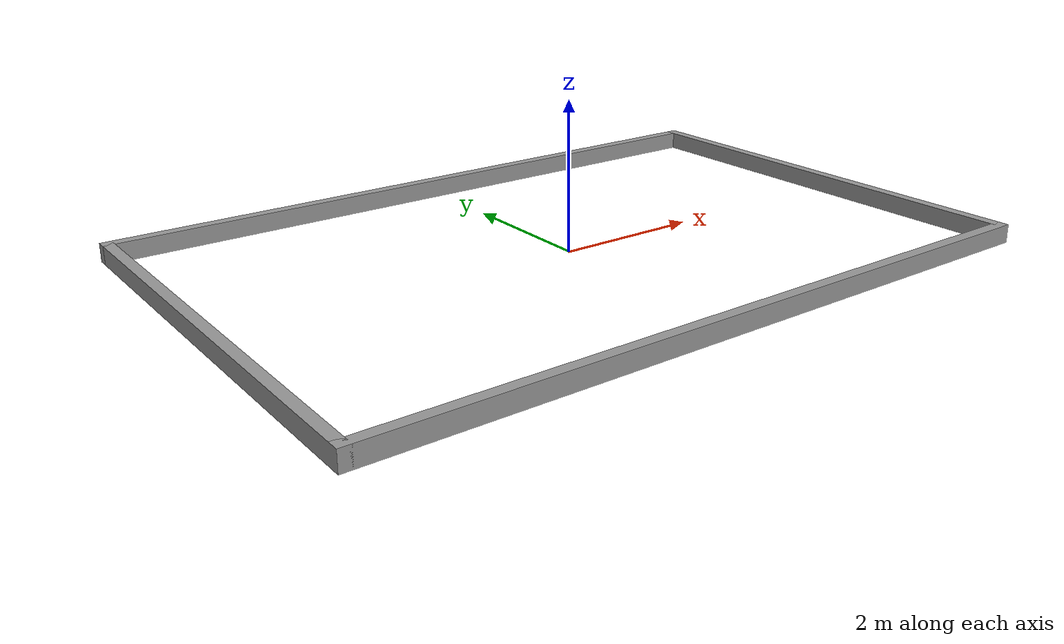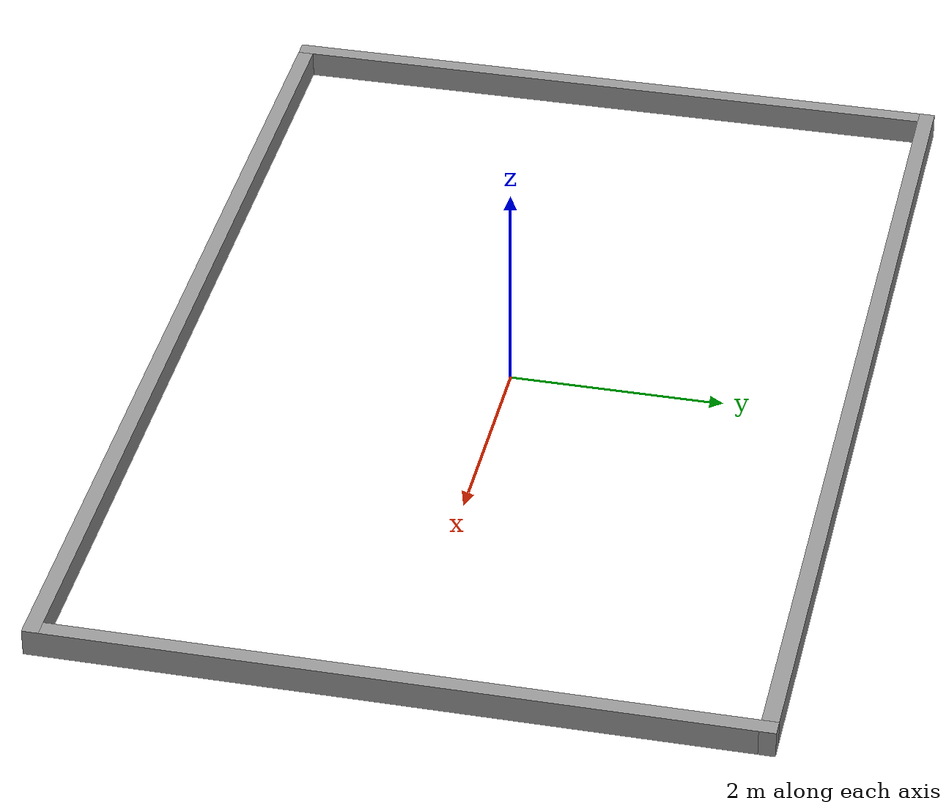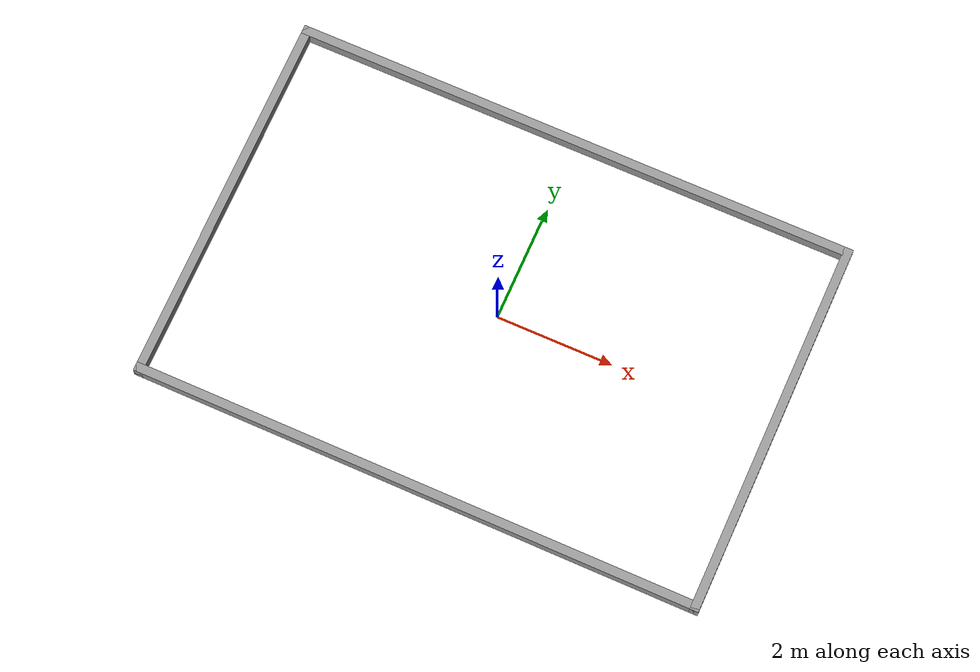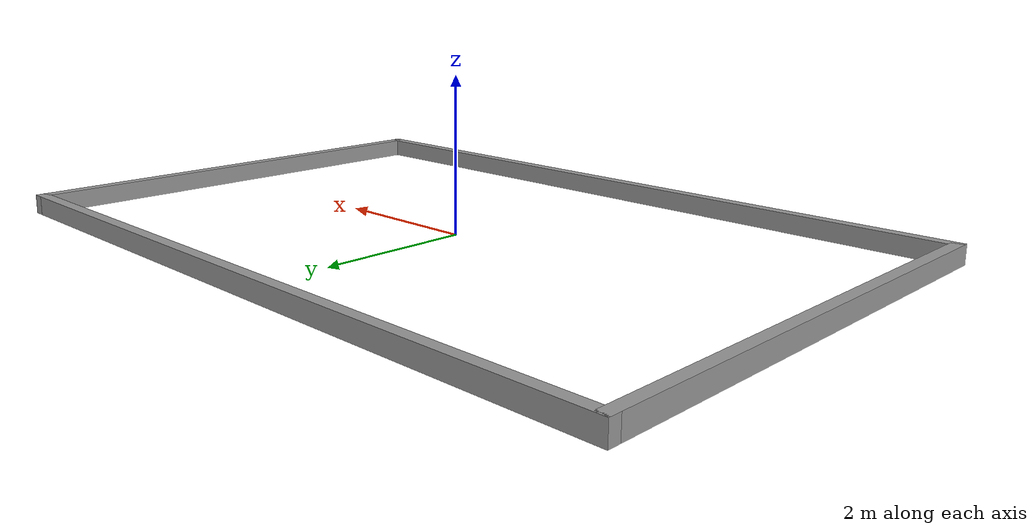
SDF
<?xml version='1.0'?>
<sdf version='1.7'>
  <model name='walls'>
    <pose>-0.051936 0.025334 0 0 -0 0</pose>
    <link name='Wall_0'>
      <collision name='Wall_0_Collision'>
        <geometry>
          <box>
            <size>6.5 0.15 0.25</size>
          </box>
        </geometry>
        <pose>0 0 0.125 0 -0 0</pose>
      </collision>
      <visual name='Wall_0_Visual'>
        <pose>0 0 0.125 0 -0 0</pose>
        <geometry>
          <box>
            <size>6.5 0.15 0.25</size>
          </box>
        </geometry>
        <material>
          <script>
            <uri>file://media/materials/scripts/gazebo.material</uri>
            <name>Gazebo/Grey</name>
          </script>
          <ambient>1 1 1 1</ambient>
        </material>
        <meta>
          <layer>0</layer>
        </meta>
      </visual>
      <pose>-4.8 0 0 0 -0 -1.5708</pose>
    </link>
    <link name='Wall_2'>
      <collision name='Wall_2_Collision'>
        <geometry>
          <box>
            <size>9.75 0.15 0.25</size>
          </box>
        </geometry>
        <pose>0 0 0.125 0 -0 0</pose>
      </collision>
      <visual name='Wall_2_Visual'>
        <pose>0 0 0.125 0 -0 0</pose>
        <geometry>
          <box>
            <size>9.75 0.15 0.25</size>
          </box>
        </geometry>
        <material>
          <script>
            <uri>file://media/materials/scripts/gazebo.material</uri>
            <name>Gazebo/Grey</name>
          </script>
          <ambient>1 1 1 1</ambient>
        </material>
        <meta>
          <layer>0</layer>
        </meta>
      </visual>
      <pose>0 -3.175 0 0 -0 0</pose>
    </link>
    <link name='Wall_4'>
      <collision name='Wall_4_Collision'>
        <geometry>
          <box>
            <size>6.5 0.15 0.25</size>
          </box>
        </geometry>
        <pose>0 0 0.125 0 -0 0</pose>
      </collision>
      <visual name='Wall_4_Visual'>
        <pose>0 0 0.125 0 -0 0</pose>
        <geometry>
          <box>
            <size>6.5 0.15 0.25</size>
          </box>
        </geometry>
        <material>
          <script>
            <uri>file://media/materials/scripts/gazebo.material</uri>
            <name>Gazebo/Grey</name>
          </script>
          <ambient>1 1 1 1</ambient>
        </material>
        <meta>
          <layer>0</layer>
        </meta>
      </visual>
      <pose>4.8 0 0 0 -0 1.5708</pose>
    </link>
    <link name='Wall_5'>
      <collision name='Wall_5_Collision'>
        <geometry>
          <box>
            <size>9.75 0.15 0.25</size>
          </box>
        </geometry>
        <pose>0 0 0.125 0 -0 0</pose>
      </collision>
      <visual name='Wall_5_Visual'>
        <pose>0 0 0.125 0 -0 0</pose>
        <geometry>
          <box>
            <size>9.75 0.15 0.25</size>
          </box>
        </geometry>
        <material>
          <script>
            <uri>file://media/materials/scripts/gazebo.material</uri>
            <name>Gazebo/Grey</name>
          </script>
          <ambient>1 1 1 1</ambient>
        </material>
        <meta>
          <layer>0</layer>
        </meta>
      </visual>
      <pose>0 3.175 0 0 -0 3.14159</pose>
    </link>
    <static>1</static>
  </model>
</sdf>
